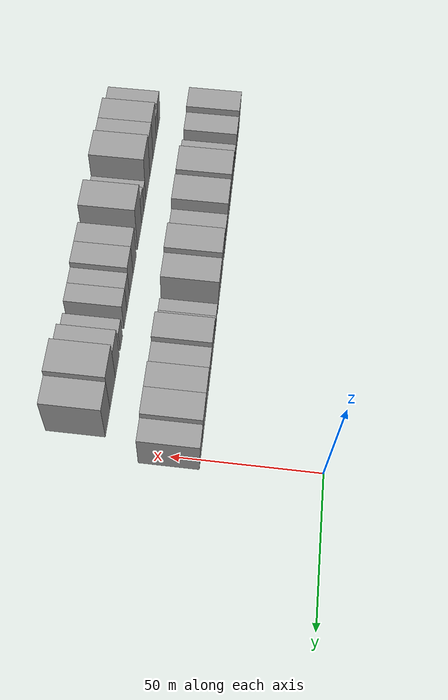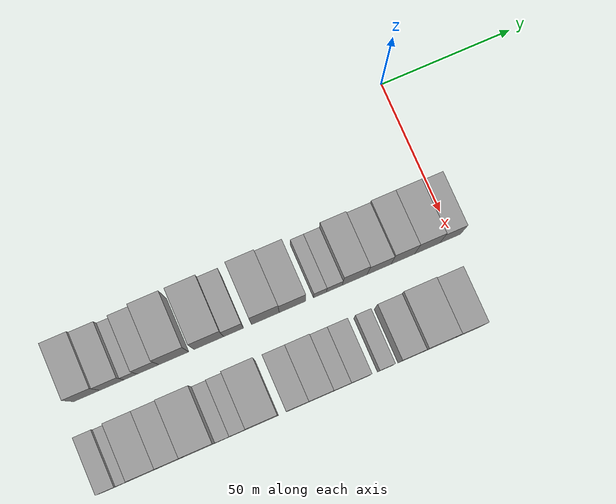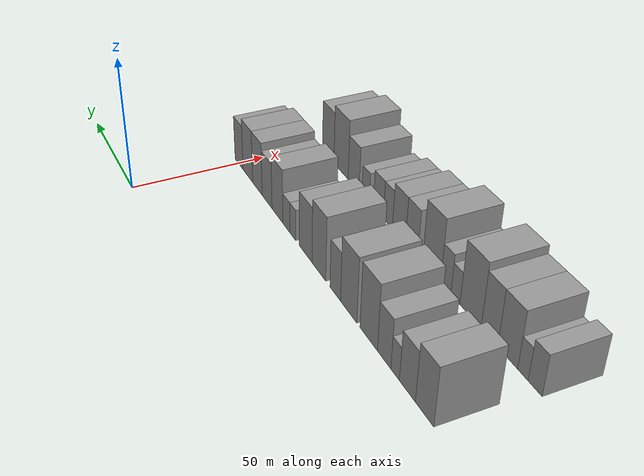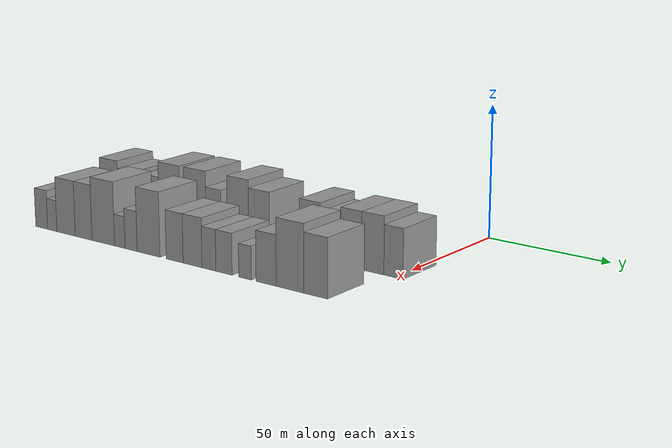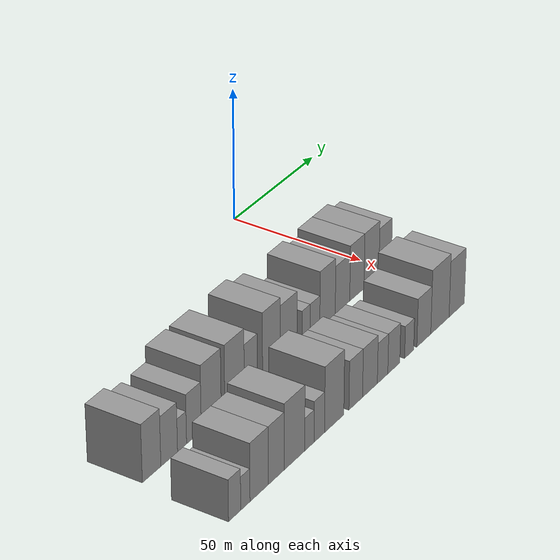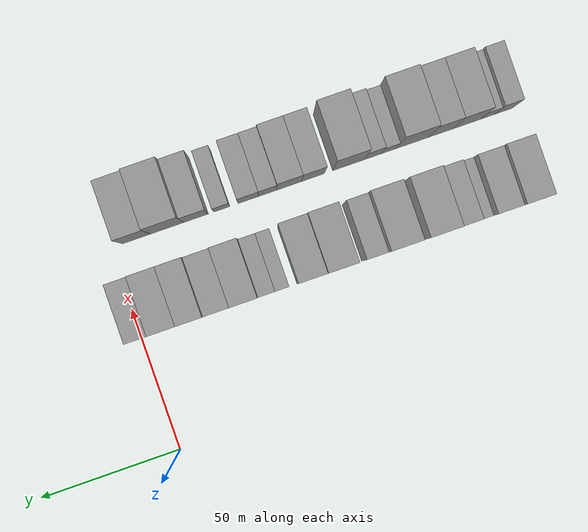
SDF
<sdf version="1.6">
 <world name="default">
  <model name="building_15">
   <static>1</static>
   <pose>50.0000 -136.4984 0 0.000000 0.000000 0.000000</pose>
   <link name="link">
    <pose>0 0 10.50 0 0 0</pose>
    <collision name="collision"><geometry><box><size>20.0000 9.6715 21.0000</size></box></geometry></collision>
    <visual name="visual">
     <cast_shadows>0</cast_shadows>
     <geometry><box><size>20.0000 9.6715 21.0000</size></box></geometry>
     <material>
      <script>
       <uri>model://grey_wall/materials/scripts</uri>
       <uri>model://grey_wall/materials/textures</uri>
       <name>vrc/grey_wall</name>
      </script>
     </material>
    </visual>
   </link>
  </model>
  <model name="building_16">
   <static>1</static>
   <pose>50.0000 -127.2454 0 0.000000 0.000000 0.000000</pose>
   <link name="link">
    <pose>0 0 9.00 0 0 0</pose>
    <collision name="collision"><geometry><box><size>20.0000 8.8345 18.0000</size></box></geometry></collision>
    <visual name="visual">
     <cast_shadows>0</cast_shadows>
     <geometry><box><size>20.0000 8.8345 18.0000</size></box></geometry>
     <material>
      <script>
       <uri>model://grey_wall/materials/scripts</uri>
       <uri>model://grey_wall/materials/textures</uri>
       <name>vrc/grey_wall</name>
      </script>
     </material>
    </visual>
   </link>
  </model>
  <model name="building_17">
   <static>1</static>
   <pose>50.0000 -120.4018 0 0.000000 0.000000 0.000000</pose>
   <link name="link">
    <pose>0 0 6.00 0 0 0</pose>
    <collision name="collision"><geometry><box><size>20.0000 4.8527 12.0000</size></box></geometry></collision>
    <visual name="visual">
     <cast_shadows>0</cast_shadows>
     <geometry><box><size>20.0000 4.8527 12.0000</size></box></geometry>
     <material>
      <script>
       <uri>model://grey_wall/materials/scripts</uri>
       <uri>model://grey_wall/materials/textures</uri>
       <name>vrc/grey_wall</name>
      </script>
     </material>
    </visual>
   </link>
  </model>
  <model name="building_18">
   <static>1</static>
   <pose>50.0000 -113.9878 0 0.000000 0.000000 0.000000</pose>
   <link name="link">
    <pose>0 0 9.00 0 0 0</pose>
    <collision name="collision"><geometry><box><size>20.0000 7.9753 18.0000</size></box></geometry></collision>
    <visual name="visual">
     <cast_shadows>0</cast_shadows>
     <geometry><box><size>20.0000 7.9753 18.0000</size></box></geometry>
     <material>
      <script>
       <uri>model://grey_wall/materials/scripts</uri>
       <uri>model://grey_wall/materials/textures</uri>
       <name>vrc/grey_wall</name>
      </script>
     </material>
    </visual>
   </link>
  </model>
  <model name="building_19">
   <static>1</static>
   <pose>50.0000 -104.5113 0 0.000000 0.000000 0.000000</pose>
   <link name="link">
    <pose>0 0 12.00 0 0 0</pose>
    <collision name="collision"><geometry><box><size>20.0000 10.9776 24.0000</size></box></geometry></collision>
    <visual name="visual">
     <cast_shadows>0</cast_shadows>
     <geometry><box><size>20.0000 10.9776 24.0000</size></box></geometry>
     <material>
      <script>
       <uri>model://grey_wall/materials/scripts</uri>
       <uri>model://grey_wall/materials/textures</uri>
       <name>vrc/grey_wall</name>
      </script>
     </material>
    </visual>
   </link>
  </model>
  <model name="building_20">
   <static>1</static>
   <pose>50.0000 -91.5438 0 0.000000 0.000000 0.000000</pose>
   <link name="link">
    <pose>0 0 12.00 0 0 0</pose>
    <collision name="collision"><geometry><box><size>20.0000 10.9575 24.0000</size></box></geometry></collision>
    <visual name="visual">
     <cast_shadows>0</cast_shadows>
     <geometry><box><size>20.0000 10.9575 24.0000</size></box></geometry>
     <material>
      <script>
       <uri>model://grey_wall/materials/scripts</uri>
       <uri>model://grey_wall/materials/textures</uri>
       <name>vrc/grey_wall</name>
      </script>
     </material>
    </visual>
   </link>
  </model>
  <model name="building_21">
   <static>1</static>
   <pose>50.0000 -82.3586 0 0.000000 0.000000 0.000000</pose>
   <link name="link">
    <pose>0 0 9.00 0 0 0</pose>
    <collision name="collision"><geometry><box><size>20.0000 7.4127 18.0000</size></box></geometry></collision>
    <visual name="visual">
     <cast_shadows>0</cast_shadows>
     <geometry><box><size>20.0000 7.4127 18.0000</size></box></geometry>
     <material>
      <script>
       <uri>model://grey_wall/materials/scripts</uri>
       <uri>model://grey_wall/materials/textures</uri>
       <name>vrc/grey_wall</name>
      </script>
     </material>
    </visual>
   </link>
  </model>
  <model name="building_22">
   <static>1</static>
   <pose>50.0000 -70.5201 0 0.000000 0.000000 0.000000</pose>
   <link name="link">
    <pose>0 0 12.00 0 0 0</pose>
    <collision name="collision"><geometry><box><size>20.0000 10.2644 24.0000</size></box></geometry></collision>
    <visual name="visual">
     <cast_shadows>0</cast_shadows>
     <geometry><box><size>20.0000 10.2644 24.0000</size></box></geometry>
     <material>
      <script>
       <uri>model://grey_wall/materials/scripts</uri>
       <uri>model://grey_wall/materials/textures</uri>
       <name>vrc/grey_wall</name>
      </script>
     </material>
    </visual>
   </link>
  </model>
  <model name="building_23">
   <static>1</static>
   <pose>50.0000 -60.4606 0 0.000000 0.000000 0.000000</pose>
   <link name="link">
    <pose>0 0 10.50 0 0 0</pose>
    <collision name="collision"><geometry><box><size>20.0000 9.8546 21.0000</size></box></geometry></collision>
    <visual name="visual">
     <cast_shadows>0</cast_shadows>
     <geometry><box><size>20.0000 9.8546 21.0000</size></box></geometry>
     <material>
      <script>
       <uri>model://grey_wall/materials/scripts</uri>
       <uri>model://grey_wall/materials/textures</uri>
       <name>vrc/grey_wall</name>
      </script>
     </material>
    </visual>
   </link>
  </model>
  <model name="building_24">
   <static>1</static>
   <pose>50.0000 -50.1069 0 0.000000 0.000000 0.000000</pose>
   <link name="link">
    <pose>0 0 6.00 0 0 0</pose>
    <collision name="collision"><geometry><box><size>20.0000 4.8529 12.0000</size></box></geometry></collision>
    <visual name="visual">
     <cast_shadows>0</cast_shadows>
     <geometry><box><size>20.0000 4.8529 12.0000</size></box></geometry>
     <material>
      <script>
       <uri>model://grey_wall/materials/scripts</uri>
       <uri>model://grey_wall/materials/textures</uri>
       <name>vrc/grey_wall</name>
      </script>
     </material>
    </visual>
   </link>
  </model>
  <model name="building_25">
   <static>1</static>
   <pose>50.0000 -44.7329 0 0.000000 0.000000 0.000000</pose>
   <link name="link">
    <pose>0 0 6.00 0 0 0</pose>
    <collision name="collision"><geometry><box><size>20.0000 5.8950 12.0000</size></box></geometry></collision>
    <visual name="visual">
     <cast_shadows>0</cast_shadows>
     <geometry><box><size>20.0000 5.8950 12.0000</size></box></geometry>
     <material>
      <script>
       <uri>model://grey_wall/materials/scripts</uri>
       <uri>model://grey_wall/materials/textures</uri>
       <name>vrc/grey_wall</name>
      </script>
     </material>
    </visual>
   </link>
  </model>
  <model name="building_26">
   <static>1</static>
   <pose>50.0000 -37.0605 0 0.000000 0.000000 0.000000</pose>
   <link name="link">
    <pose>0 0 10.50 0 0 0</pose>
    <collision name="collision"><geometry><box><size>20.0000 9.4498 21.0000</size></box></geometry></collision>
    <visual name="visual">
     <cast_shadows>0</cast_shadows>
     <geometry><box><size>20.0000 9.4498 21.0000</size></box></geometry>
     <material>
      <script>
       <uri>model://grey_wall/materials/scripts</uri>
       <uri>model://grey_wall/materials/textures</uri>
       <name>vrc/grey_wall</name>
      </script>
     </material>
    </visual>
   </link>
  </model>
  <model name="building_27">
   <static>1</static>
   <pose>50.0000 -27.8437 0 0.000000 0.000000 0.000000</pose>
   <link name="link">
    <pose>0 0 9.00 0 0 0</pose>
    <collision name="collision"><geometry><box><size>20.0000 8.9838 18.0000</size></box></geometry></collision>
    <visual name="visual">
     <cast_shadows>0</cast_shadows>
     <geometry><box><size>20.0000 8.9838 18.0000</size></box></geometry>
     <material>
      <script>
       <uri>model://grey_wall/materials/scripts</uri>
       <uri>model://grey_wall/materials/textures</uri>
       <name>vrc/grey_wall</name>
      </script>
     </material>
    </visual>
   </link>
  </model>
  <model name="building_28">
   <static>1</static>
   <pose>50.0000 -18.8576 0 0.000000 0.000000 0.000000</pose>
   <link name="link">
    <pose>0 0 10.50 0 0 0</pose>
    <collision name="collision"><geometry><box><size>20.0000 8.9882 21.0000</size></box></geometry></collision>
    <visual name="visual">
     <cast_shadows>0</cast_shadows>
     <geometry><box><size>20.0000 8.9882 21.0000</size></box></geometry>
     <material>
      <script>
       <uri>model://grey_wall/materials/scripts</uri>
       <uri>model://grey_wall/materials/textures</uri>
       <name>vrc/grey_wall</name>
      </script>
     </material>
    </visual>
   </link>
  </model>
  <model name="building_29">
   <static>1</static>
   <pose>50.0000 -9.6039 0 0.000000 0.000000 0.000000</pose>
   <link name="link">
    <pose>0 0 10.50 0 0 0</pose>
    <collision name="collision"><geometry><box><size>20.0000 9.5193 21.0000</size></box></geometry></collision>
    <visual name="visual">
     <cast_shadows>0</cast_shadows>
     <geometry><box><size>20.0000 9.5193 21.0000</size></box></geometry>
     <material>
      <script>
       <uri>model://grey_wall/materials/scripts</uri>
       <uri>model://grey_wall/materials/textures</uri>
       <name>vrc/grey_wall</name>
      </script>
     </material>
    </visual>
   </link>
  </model>
  <model name="building_30">
   <static>1</static>
   <pose>50.0000 -0.8209 0 0.000000 0.000000 0.000000</pose>
   <link name="link">
    <pose>0 0 9.00 0 0 0</pose>
    <collision name="collision"><geometry><box><size>20.0000 8.0467 18.0000</size></box></geometry></collision>
    <visual name="visual">
     <cast_shadows>0</cast_shadows>
     <geometry><box><size>20.0000 8.0467 18.0000</size></box></geometry>
     <material>
      <script>
       <uri>model://grey_wall/materials/scripts</uri>
       <uri>model://grey_wall/materials/textures</uri>
       <name>vrc/grey_wall</name>
      </script>
     </material>
    </visual>
   </link>
  </model>
  <model name="building_81">
   <static>1</static>
   <pose>82.0000 -140.3889 0 0.000000 0.000000 0.000000</pose>
   <link name="link">
    <pose>0 0 7.50 0 0 0</pose>
    <collision name="collision"><geometry><box><size>20.0000 6.4805 15.0000</size></box></geometry></collision>
    <visual name="visual">
     <cast_shadows>0</cast_shadows>
     <geometry><box><size>20.0000 6.4805 15.0000</size></box></geometry>
     <material>
      <script>
       <uri>model://grey_wall/materials/scripts</uri>
       <uri>model://grey_wall/materials/textures</uri>
       <name>vrc/grey_wall</name>
      </script>
     </material>
    </visual>
   </link>
  </model>
  <model name="building_82">
   <static>1</static>
   <pose>82.0000 -134.6640 0 0.000000 0.000000 0.000000</pose>
   <link name="link">
    <pose>0 0 6.00 0 0 0</pose>
    <collision name="collision"><geometry><box><size>20.0000 4.9693 12.0000</size></box></geometry></collision>
    <visual name="visual">
     <cast_shadows>0</cast_shadows>
     <geometry><box><size>20.0000 4.9693 12.0000</size></box></geometry>
     <material>
      <script>
       <uri>model://grey_wall/materials/scripts</uri>
       <uri>model://grey_wall/materials/textures</uri>
       <name>vrc/grey_wall</name>
      </script>
     </material>
    </visual>
   </link>
  </model>
  <model name="building_83">
   <static>1</static>
   <pose>82.0000 -127.2346 0 0.000000 0.000000 0.000000</pose>
   <link name="link">
    <pose>0 0 10.50 0 0 0</pose>
    <collision name="collision"><geometry><box><size>20.0000 9.8894 21.0000</size></box></geometry></collision>
    <visual name="visual">
     <cast_shadows>0</cast_shadows>
     <geometry><box><size>20.0000 9.8894 21.0000</size></box></geometry>
     <material>
      <script>
       <uri>model://grey_wall/materials/scripts</uri>
       <uri>model://grey_wall/materials/textures</uri>
       <name>vrc/grey_wall</name>
      </script>
     </material>
    </visual>
   </link>
  </model>
  <model name="building_84">
   <static>1</static>
   <pose>82.0000 -117.9228 0 0.000000 0.000000 0.000000</pose>
   <link name="link">
    <pose>0 0 10.50 0 0 0</pose>
    <collision name="collision"><geometry><box><size>20.0000 8.7342 21.0000</size></box></geometry></collision>
    <visual name="visual">
     <cast_shadows>0</cast_shadows>
     <geometry><box><size>20.0000 8.7342 21.0000</size></box></geometry>
     <material>
      <script>
       <uri>model://grey_wall/materials/scripts</uri>
       <uri>model://grey_wall/materials/textures</uri>
       <name>vrc/grey_wall</name>
      </script>
     </material>
    </visual>
   </link>
  </model>
  <model name="building_85">
   <static>1</static>
   <pose>82.0000 -107.7560 0 0.000000 0.000000 0.000000</pose>
   <link name="link">
    <pose>0 0 12.00 0 0 0</pose>
    <collision name="collision"><geometry><box><size>20.0000 11.5994 24.0000</size></box></geometry></collision>
    <visual name="visual">
     <cast_shadows>0</cast_shadows>
     <geometry><box><size>20.0000 11.5994 24.0000</size></box></geometry>
     <material>
      <script>
       <uri>model://grey_wall/materials/scripts</uri>
       <uri>model://grey_wall/materials/textures</uri>
       <name>vrc/grey_wall</name>
      </script>
     </material>
    </visual>
   </link>
  </model>
  <model name="building_86">
   <static>1</static>
   <pose>82.0000 -99.3330 0 0.000000 0.000000 0.000000</pose>
   <link name="link">
    <pose>0 0 6.00 0 0 0</pose>
    <collision name="collision"><geometry><box><size>20.0000 5.2466 12.0000</size></box></geometry></collision>
    <visual name="visual">
     <cast_shadows>0</cast_shadows>
     <geometry><box><size>20.0000 5.2466 12.0000</size></box></geometry>
     <material>
      <script>
       <uri>model://grey_wall/materials/scripts</uri>
       <uri>model://grey_wall/materials/textures</uri>
       <name>vrc/grey_wall</name>
      </script>
     </material>
    </visual>
   </link>
  </model>
  <model name="building_87">
   <static>1</static>
   <pose>82.0000 -93.6770 0 0.000000 0.000000 0.000000</pose>
   <link name="link">
    <pose>0 0 7.50 0 0 0</pose>
    <collision name="collision"><geometry><box><size>20.0000 6.0653 15.0000</size></box></geometry></collision>
    <visual name="visual">
     <cast_shadows>0</cast_shadows>
     <geometry><box><size>20.0000 6.0653 15.0000</size></box></geometry>
     <material>
      <script>
       <uri>model://grey_wall/materials/scripts</uri>
       <uri>model://grey_wall/materials/textures</uri>
       <name>vrc/grey_wall</name>
      </script>
     </material>
    </visual>
   </link>
  </model>
  <model name="building_88">
   <static>1</static>
   <pose>82.0000 -85.0400 0 0.000000 0.000000 0.000000</pose>
   <link name="link">
    <pose>0 0 12.00 0 0 0</pose>
    <collision name="collision"><geometry><box><size>20.0000 11.2087 24.0000</size></box></geometry></collision>
    <visual name="visual">
     <cast_shadows>0</cast_shadows>
     <geometry><box><size>20.0000 11.2087 24.0000</size></box></geometry>
     <material>
      <script>
       <uri>model://grey_wall/materials/scripts</uri>
       <uri>model://grey_wall/materials/textures</uri>
       <name>vrc/grey_wall</name>
      </script>
     </material>
    </visual>
   </link>
  </model>
  <model name="building_89">
   <static>1</static>
   <pose>82.0000 -72.3990 0 0.000000 0.000000 0.000000</pose>
   <link name="link">
    <pose>0 0 9.00 0 0 0</pose>
    <collision name="collision"><geometry><box><size>20.0000 8.0733 18.0000</size></box></geometry></collision>
    <visual name="visual">
     <cast_shadows>0</cast_shadows>
     <geometry><box><size>20.0000 8.0733 18.0000</size></box></geometry>
     <material>
      <script>
       <uri>model://grey_wall/materials/scripts</uri>
       <uri>model://grey_wall/materials/textures</uri>
       <name>vrc/grey_wall</name>
      </script>
     </material>
    </visual>
   </link>
  </model>
  <model name="building_90">
   <static>1</static>
   <pose>82.0000 -63.9144 0 0.000000 0.000000 0.000000</pose>
   <link name="link">
    <pose>0 0 9.00 0 0 0</pose>
    <collision name="collision"><geometry><box><size>20.0000 8.8960 18.0000</size></box></geometry></collision>
    <visual name="visual">
     <cast_shadows>0</cast_shadows>
     <geometry><box><size>20.0000 8.8960 18.0000</size></box></geometry>
     <material>
      <script>
       <uri>model://grey_wall/materials/scripts</uri>
       <uri>model://grey_wall/materials/textures</uri>
       <name>vrc/grey_wall</name>
      </script>
     </material>
    </visual>
   </link>
  </model>
  <model name="building_91">
   <static>1</static>
   <pose>82.0000 -56.2699 0 0.000000 0.000000 0.000000</pose>
   <link name="link">
    <pose>0 0 7.50 0 0 0</pose>
    <collision name="collision"><geometry><box><size>20.0000 6.3929 15.0000</size></box></geometry></collision>
    <visual name="visual">
     <cast_shadows>0</cast_shadows>
     <geometry><box><size>20.0000 6.3929 15.0000</size></box></geometry>
     <material>
      <script>
       <uri>model://grey_wall/materials/scripts</uri>
       <uri>model://grey_wall/materials/textures</uri>
       <name>vrc/grey_wall</name>
      </script>
     </material>
    </visual>
   </link>
  </model>
  <model name="building_92">
   <static>1</static>
   <pose>82.0000 -49.3878 0 0.000000 0.000000 0.000000</pose>
   <link name="link">
    <pose>0 0 7.50 0 0 0</pose>
    <collision name="collision"><geometry><box><size>20.0000 7.3713 15.0000</size></box></geometry></collision>
    <visual name="visual">
     <cast_shadows>0</cast_shadows>
     <geometry><box><size>20.0000 7.3713 15.0000</size></box></geometry>
     <material>
      <script>
       <uri>model://grey_wall/materials/scripts</uri>
       <uri>model://grey_wall/materials/textures</uri>
       <name>vrc/grey_wall</name>
      </script>
     </material>
    </visual>
   </link>
  </model>
  <model name="building_93">
   <static>1</static>
   <pose>82.0000 -39.8632 0 0.000000 0.000000 0.000000</pose>
   <link name="link">
    <pose>0 0 6.00 0 0 0</pose>
    <collision name="collision"><geometry><box><size>20.0000 5.6779 12.0000</size></box></geometry></collision>
    <visual name="visual">
     <cast_shadows>0</cast_shadows>
     <geometry><box><size>20.0000 5.6779 12.0000</size></box></geometry>
     <material>
      <script>
       <uri>model://grey_wall/materials/scripts</uri>
       <uri>model://grey_wall/materials/textures</uri>
       <name>vrc/grey_wall</name>
      </script>
     </material>
    </visual>
   </link>
  </model>
  <model name="building_94">
   <static>1</static>
   <pose>82.0000 -30.6163 0 0.000000 0.000000 0.000000</pose>
   <link name="link">
    <pose>0 0 9.00 0 0 0</pose>
    <collision name="collision"><geometry><box><size>20.0000 8.8159 18.0000</size></box></geometry></collision>
    <visual name="visual">
     <cast_shadows>0</cast_shadows>
     <geometry><box><size>20.0000 8.8159 18.0000</size></box></geometry>
     <material>
      <script>
       <uri>model://grey_wall/materials/scripts</uri>
       <uri>model://grey_wall/materials/textures</uri>
       <name>vrc/grey_wall</name>
      </script>
     </material>
    </visual>
   </link>
  </model>
  <model name="building_95">
   <static>1</static>
   <pose>82.0000 -20.3291 0 0.000000 0.000000 0.000000</pose>
   <link name="link">
    <pose>0 0 12.00 0 0 0</pose>
    <collision name="collision"><geometry><box><size>20.0000 11.7586 24.0000</size></box></geometry></collision>
    <visual name="visual">
     <cast_shadows>0</cast_shadows>
     <geometry><box><size>20.0000 11.7586 24.0000</size></box></geometry>
     <material>
      <script>
       <uri>model://grey_wall/materials/scripts</uri>
       <uri>model://grey_wall/materials/textures</uri>
       <name>vrc/grey_wall</name>
      </script>
     </material>
    </visual>
   </link>
  </model>
  <model name="building_96">
   <static>1</static>
   <pose>82.0000 -9.4634 0 0.000000 0.000000 0.000000</pose>
   <link name="link">
    <pose>0 0 10.50 0 0 0</pose>
    <collision name="collision"><geometry><box><size>20.0000 9.9728 21.0000</size></box></geometry></collision>
    <visual name="visual">
     <cast_shadows>0</cast_shadows>
     <geometry><box><size>20.0000 9.9728 21.0000</size></box></geometry>
     <material>
      <script>
       <uri>model://grey_wall/materials/scripts</uri>
       <uri>model://grey_wall/materials/textures</uri>
       <name>vrc/grey_wall</name>
      </script>
     </material>
    </visual>
   </link>
  </model>
 </world>
</sdf>
